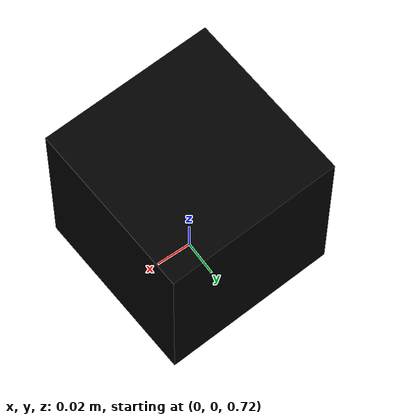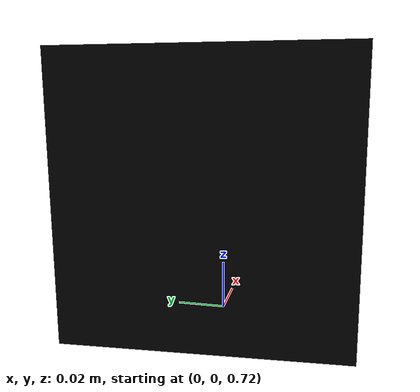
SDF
<?xml version='1.0'?>
<sdf version='1.6'>
  <model name='camera_2'>
    <link name='link'>
      <inertial>
        <mass>0.1</mass>
        <inertia>
          <ixx>0.00016667</ixx>
          <iyy>0.00016667</iyy>
          <izz>0.00016667</izz>
          <ixy>0</ixy>
          <ixz>0</ixz>
          <iyz>0</iyz>
        </inertia>
        <pose frame=''>0 0 0 0 -0 0</pose>
      </inertial>
      <sensor name='camera_2' type='camera'>
        <camera name='camera_2'>
          <horizontal_fov>1.57</horizontal_fov>
          <image>
            <width>640</width>
            <height>480</height>
          </image>
          <clip>
            <near>0.1</near>
            <far>100</far>
          </clip>
        </camera>
        <always_on>1</always_on>
        <update_rate>10</update_rate>
        <visualize>1</visualize>
        <plugin name='camera_dump_2' filename='libcamera_dump_2.so'/>
      </sensor>
      <self_collide>0</self_collide>
      <enable_wind>0</enable_wind>
      <kinematic>0</kinematic>
      <pose frame=''>0.000403 0.000736 0.775539 0.000912 -0.000583 -3.0737</pose>
      <gravity>0</gravity>
      <visual name='visual'>
        <geometry>
          <box>
            <size>0.1 0.1 0.1</size>
          </box>
        </geometry>
        <pose frame=''>0 0 0 0 -0 0</pose>
        <transparency>0</transparency>
        <cast_shadows>1</cast_shadows>
        <material>
          <shader type='vertex'>
            <normal_map>__default__</normal_map>
          </shader>
          <script>
            <name>ModelPreview_1::link::visual_MATERIAL_</name>
          </script>
          <ambient>0 0 0 1</ambient>
          <diffuse>0 0 0 1</diffuse>
          <specular>0 0 0 1</specular>
          <emissive>0 0 0 1</emissive>
        </material>
      </visual>
      <collision name='collision'>
        <laser_retro>0</laser_retro>
        <max_contacts>10</max_contacts>
        <pose frame=''>0 0 0 0 -0 0</pose>
        <geometry>
          <box>
            <size>0.1 0.1 0.1</size>
          </box>
        </geometry>
        <surface>
          <friction>
            <ode>
              <mu>1</mu>
              <mu2>1</mu2>
              <fdir1>0 0 0</fdir1>
              <slip1>0</slip1>
              <slip2>0</slip2>
            </ode>
            <torsional>
              <coefficient>1</coefficient>
              <patch_radius>0</patch_radius>
              <surface_radius>0</surface_radius>
              <use_patch_radius>1</use_patch_radius>
              <ode>
                <slip>0</slip>
              </ode>
            </torsional>
          </friction>
          <bounce>
            <restitution_coefficient>0</restitution_coefficient>
            <threshold>1e+06</threshold>
          </bounce>
          <contact>
            <collide_without_contact>0</collide_without_contact>
            <collide_without_contact_bitmask>1</collide_without_contact_bitmask>
            <collide_bitmask>1</collide_bitmask>
            <ode>
              <soft_cfm>0</soft_cfm>
              <soft_erp>0.2</soft_erp>
              <kp>1e+13</kp>
              <kd>1</kd>
              <max_vel>0.01</max_vel>
              <min_depth>0</min_depth>
            </ode>
            <bullet>
              <split_impulse>1</split_impulse>
              <split_impulse_penetration_threshold>-0.01</split_impulse_penetration_threshold>
              <soft_cfm>0</soft_cfm>
              <soft_erp>0.2</soft_erp>
              <kp>1e+13</kp>
              <kd>1</kd>
            </bullet>
          </contact>
        </surface>
      </collision>
    </link>
    <static>0</static>
    <allow_auto_disable>1</allow_auto_disable>
  </model>
</sdf>
